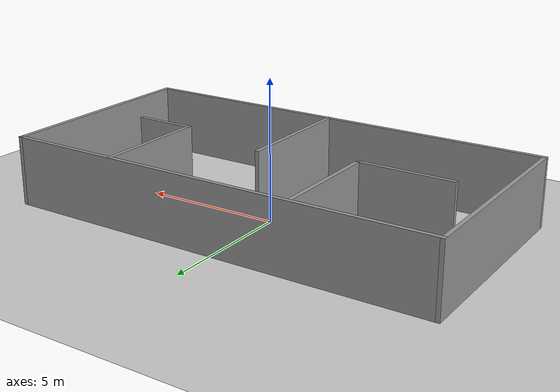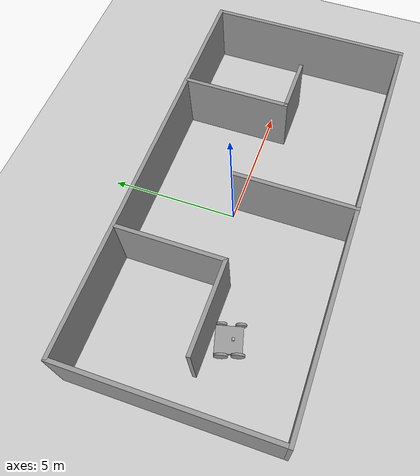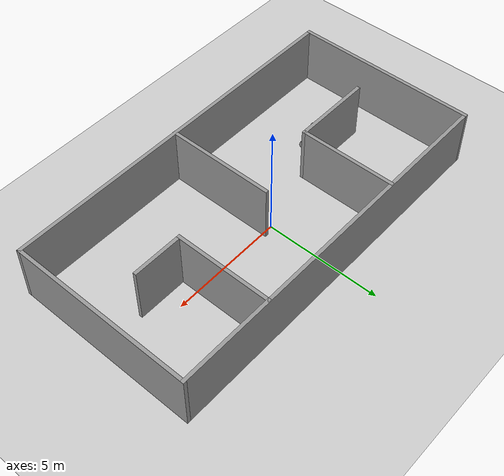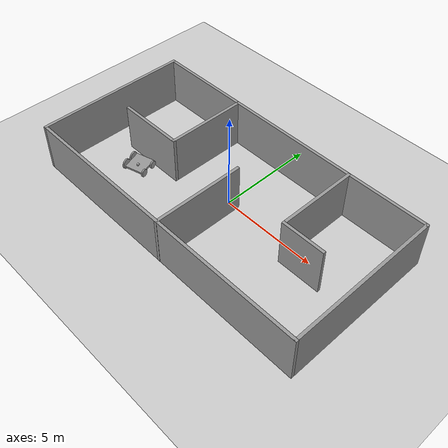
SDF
<sdf version="1.7">
 <world name="default">
  <light name="sun" type="directional">
   <pose>0 0 10 0 -0 0</pose>
   <diffuse>0.8 0.8 0.8 1</diffuse>
   <specular>0.2 0.2 0.2 1</specular>
   <attenuation>
    <range>1000</range>
    <constant>0.9</constant>
    <linear>0.01</linear>
    <quadratic>0.001</quadratic>
   </attenuation>
   <direction>-0.5 0.1 -0.9</direction>
   <spot><inner_angle>0</inner_angle><outer_angle>0</outer_angle><falloff>0</falloff></spot>
  </light>
  <model name="ground_plane">
   <static>1</static>
   <link name="link">
    <collision name="collision">
     <geometry><plane><normal>0 0 1</normal><size>100 100</size></plane></geometry>
     <surface>
      <contact><collide_bitmask>65535</collide_bitmask></contact>
      <friction><ode><mu>100</mu><mu2>50</mu2></ode></friction>
     </surface>
    </collision>
    <visual name="visual">
     <cast_shadows>0</cast_shadows>
     <geometry><plane><normal>0 0 1</normal><size>100 100</size></plane></geometry>
     <material>
      <script><uri>file://media/materials/scripts/gazebo.material</uri><name>Gazebo/Grey</name></script>
     </material>
    </visual>
   </link>
  </model>
  <gravity>0 0 -9.8</gravity>
  <magnetic_field>6e-06 2.3e-05 -4.2e-05</magnetic_field>
  <atmosphere type="adiabatic"/>
  <physics type="ode">
   <max_step_size>0.001</max_step_size>
   <real_time_factor>1</real_time_factor>
   <real_time_update_rate>1000</real_time_update_rate>
  </physics>
  <scene><ambient>0.4 0.4 0.4 1</ambient><background>0.7 0.7 0.7 1</background><shadows>1</shadows></scene>
  <spherical_coordinates>
   <surface_model>EARTH_WGS84</surface_model>
   <latitude_deg>0</latitude_deg>
   <longitude_deg>0</longitude_deg>
   <elevation>0</elevation>
   <heading_deg>0</heading_deg>
  </spherical_coordinates>
  <model name="room">
   <pose>0.190281 0.41132 0 0 -0 0</pose>
   <link name="Wall_40">
    <collision name="Wall_40_Collision">
     <geometry><box><size>16 0.15 2.5</size></box></geometry>
     <pose>0 0 1.25 0 -0 0</pose>
    </collision>
    <visual name="Wall_40_Visual">
     <pose>0 0 1.25 0 -0 0</pose>
     <geometry><box><size>16 0.15 2.5</size></box></geometry>
     <material>
      <script><uri>file://media/materials/scripts/gazebo.material</uri><name>Gazebo/Grey</name></script>
      <ambient>1 1 1 1</ambient>
     </material>
     <meta><layer>0</layer></meta>
    </visual>
    <pose>-0 2.92851 0 0 -0 0</pose>
   </link>
   <link name="Wall_41">
    <collision name="Wall_41_Collision">
     <geometry><box><size>8 0.15 2.5</size></box></geometry>
     <pose>0 0 1.25 0 -0 0</pose>
    </collision>
    <visual name="Wall_41_Visual">
     <pose>0 0 1.25 0 -0 0</pose>
     <geometry><box><size>8 0.15 2.5</size></box></geometry>
     <material>
      <script><uri>file://media/materials/scripts/gazebo.material</uri><name>Gazebo/Grey</name></script>
      <ambient>1 1 1 1</ambient>
     </material>
     <meta><layer>0</layer></meta>
    </visual>
    <pose>7.925 -0.996486 0 0 -0 -1.5708</pose>
   </link>
   <link name="Wall_42">
    <collision name="Wall_42_Collision">
     <geometry><box><size>16 0.15 2.5</size></box></geometry>
     <pose>0 0 1.25 0 -0 0</pose>
    </collision>
    <visual name="Wall_42_Visual">
     <pose>0 0 1.25 0 -0 0</pose>
     <geometry><box><size>16 0.15 2.5</size></box></geometry>
     <material>
      <script><uri>file://media/materials/scripts/gazebo.material</uri><name>Gazebo/Grey</name></script>
      <ambient>1 1 1 1</ambient>
     </material>
     <meta><layer>0</layer></meta>
    </visual>
    <pose>-0 -4.92149 0 0 -0 3.14159</pose>
   </link>
   <link name="Wall_43">
    <collision name="Wall_43_Collision">
     <geometry><box><size>8 0.15 2.5</size></box></geometry>
     <pose>0 0 1.25 0 -0 0</pose>
    </collision>
    <visual name="Wall_43_Visual">
     <pose>0 0 1.25 0 -0 0</pose>
     <geometry><box><size>8 0.15 2.5</size></box></geometry>
     <material>
      <script><uri>file://media/materials/scripts/gazebo.material</uri><name>Gazebo/Grey</name></script>
      <ambient>1 1 1 1</ambient>
     </material>
     <meta><layer>0</layer></meta>
    </visual>
    <pose>-7.925 -0.996486 0 0 -0 1.5708</pose>
   </link>
   <link name="Wall_45">
    <collision name="Wall_45_Collision">
     <geometry><box><size>4.25 0.15 2.5</size></box></geometry>
     <pose>0 0 1.25 0 -0 0</pose>
    </collision>
    <visual name="Wall_45_Visual">
     <pose>0 0 1.25 0 -0 0</pose>
     <geometry><box><size>4.25 0.15 2.5</size></box></geometry>
     <material>
      <script><uri>file://media/materials/scripts/gazebo.material</uri><name>Gazebo/Grey</name></script>
      <ambient>1 1 1 1</ambient>
     </material>
     <meta><layer>0</layer></meta>
    </visual>
    <pose>-3.0589 0.852492 0 0 -0 -1.5708</pose>
   </link>
   <link name="Wall_46">
    <collision name="Wall_46_Collision">
     <geometry><box><size>3.5 0.15 2.5</size></box></geometry>
     <pose>0 0 1.25 0 -0 0</pose>
    </collision>
    <visual name="Wall_46_Visual">
     <pose>0 0 1.25 0 -0 0</pose>
     <geometry><box><size>3.5 0.15 2.5</size></box></geometry>
     <material>
      <script><uri>file://media/materials/scripts/gazebo.material</uri><name>Gazebo/Grey</name></script>
      <ambient>1 1 1 1</ambient>
     </material>
     <meta><layer>0</layer></meta>
    </visual>
    <pose>-4.7339 -1.19751 0 0 -0 3.14159</pose>
   </link>
   <link name="Wall_48">
    <collision name="Wall_48_Collision">
     <geometry><box><size>4.25 0.15 2.5</size></box></geometry>
     <pose>0 0 1.25 0 -0 0</pose>
    </collision>
    <visual name="Wall_48_Visual">
     <pose>0 0 1.25 0 -0 0</pose>
     <geometry><box><size>4.25 0.15 2.5</size></box></geometry>
     <material>
      <script><uri>file://media/materials/scripts/gazebo.material</uri><name>Gazebo/Grey</name></script>
      <ambient>1 1 1 1</ambient>
     </material>
     <meta><layer>0</layer></meta>
    </visual>
    <pose>3.86294 0.852492 0 0 -0 -1.5708</pose>
   </link>
   <link name="Wall_49">
    <collision name="Wall_49_Collision">
     <geometry><box><size>2.25 0.15 2.5</size></box></geometry>
     <pose>0 0 1.25 0 -0 0</pose>
    </collision>
    <visual name="Wall_49_Visual">
     <pose>0 0 1.25 0 -0 0</pose>
     <geometry><box><size>2.25 0.15 2.5</size></box></geometry>
     <material>
      <script><uri>file://media/materials/scripts/gazebo.material</uri><name>Gazebo/Grey</name></script>
      <ambient>1 1 1 1</ambient>
     </material>
     <meta><layer>0</layer></meta>
    </visual>
    <pose>4.91294 -1.19751 0 0 -0 0</pose>
   </link>
   <link name="Wall_51">
    <collision name="Wall_51_Collision">
     <geometry><box><size>4.75 0.15 2.5</size></box></geometry>
     <pose>0 0 1.25 0 -0 0</pose>
    </collision>
    <visual name="Wall_51_Visual">
     <pose>0 0 1.25 0 -0 0</pose>
     <geometry><box><size>4.75 0.15 2.5</size></box></geometry>
     <material>
      <script><uri>file://media/materials/scripts/gazebo.material</uri><name>Gazebo/Grey</name></script>
      <ambient>1 1 1 1</ambient>
     </material>
     <meta><layer>0</layer></meta>
    </visual>
    <pose>0.245887 -2.63011 0 0 -0 1.5708</pose>
   </link>
   <static>1</static>
  </model>
  <model name="che1">
   <link name="link_4">
    <inertial>
     <mass>0.105753</mass>
     <inertia>
      <ixx>0.00891129</ixx>
      <ixy>0</ixy>
      <ixz>0</ixz>
      <iyy>0.00891129</iyy>
      <iyz>0</iyz>
      <izz>0.0176255</izz>
     </inertia>
    </inertial>
    <pose>-0.030652 0.054695 -0.025033 0 -0 0</pose>
    <visual name="visual">
     <geometry><box><size>1 1 0.105751</size></box></geometry>
     <material>
      <lighting>1</lighting>
      <script><uri>file://media/materials/scripts/gazebo.material</uri><name>Gazebo/Grey</name></script>
      <shader type="pixel"><normal_map>__default__</normal_map></shader>
      <emissive>0 0 0 1</emissive>
      <ambient>0.3 0.3 0.3 1</ambient>
      <diffuse>0.7 0.7 0.7 1</diffuse>
      <specular>0.01 0.01 0.01 1</specular>
     </material>
    </visual>
    <collision name="collision">
     <geometry><box><size>1 1 0.105751</size></box></geometry>
     <surface>
      <friction>
       <ode><mu>1</mu><mu2>1</mu2><fdir1>0 0 0</fdir1><slip1>0</slip1><slip2>0</slip2></ode>
       <torsional>
        <coefficient>1</coefficient>
        <patch_radius>0</patch_radius>
        <surface_radius>0</surface_radius>
        <use_patch_radius>1</use_patch_radius>
        <ode><slip>0</slip></ode>
       </torsional>
      </friction>
      <bounce><restitution_coefficient>0</restitution_coefficient><threshold>1e+06</threshold></bounce>
      <contact>
       <collide_without_contact>0</collide_without_contact>
       <collide_without_contact_bitmask>1</collide_without_contact_bitmask>
       <collide_bitmask>1</collide_bitmask>
       <ode>
        <soft_cfm>0</soft_cfm>
        <soft_erp>0.2</soft_erp>
        <kp>1e+13</kp>
        <kd>1</kd>
        <max_vel>0.01</max_vel>
        <min_depth>0</min_depth>
       </ode>
       <bullet>
        <split_impulse>1</split_impulse>
        <split_impulse_penetration_threshold>-0.01</split_impulse_penetration_threshold>
        <soft_cfm>0</soft_cfm>
        <soft_erp>0.2</soft_erp>
        <kp>1e+13</kp>
        <kd>1</kd>
       </bullet>
      </contact>
     </surface>
    </collision>
   </link>
   <link name="link_5">
    <inertial>
     <mass>0.0130438</mass>
     <inertia>
      <ixx>0.000136633</ixx>
      <ixy>0</ixy>
      <ixz>0</ixz>
      <iyy>0.000136633</iyy>
      <iyz>0</iyz>
      <izz>0.000258557</izz>
     </inertia>
    </inertial>
    <pose>0.52329 -0.349267 -0.002499 -3.14134 1.5693 -3.14134</pose>
    <visual name="visual">
     <geometry><cylinder><radius>0.199109</radius><length>0.082254</length></cylinder></geometry>
     <material>
      <lighting>1</lighting>
      <script><uri>file://media/materials/scripts/gazebo.material</uri><name>Gazebo/Grey</name></script>
      <shader type="pixel"><normal_map>__default__</normal_map></shader>
      <ambient>0.3 0.3 0.3 1</ambient>
      <diffuse>0.7 0.7 0.7 1</diffuse>
      <specular>0.01 0.01 0.01 1</specular>
      <emissive>0 0 0 1</emissive>
     </material>
    </visual>
    <collision name="collision">
     <geometry><cylinder><radius>0.199109</radius><length>0.082254</length></cylinder></geometry>
     <surface>
      <friction>
       <ode><mu>1</mu><mu2>1</mu2><fdir1>0 0 0</fdir1><slip1>0</slip1><slip2>0</slip2></ode>
       <torsional>
        <coefficient>1</coefficient>
        <patch_radius>0</patch_radius>
        <surface_radius>0</surface_radius>
        <use_patch_radius>1</use_patch_radius>
        <ode><slip>0</slip></ode>
       </torsional>
      </friction>
      <bounce><restitution_coefficient>0</restitution_coefficient><threshold>1e+06</threshold></bounce>
      <contact>
       <collide_without_contact>0</collide_without_contact>
       <collide_without_contact_bitmask>1</collide_without_contact_bitmask>
       <collide_bitmask>1</collide_bitmask>
       <ode>
        <soft_cfm>0</soft_cfm>
        <soft_erp>0.2</soft_erp>
        <kp>1e+13</kp>
        <kd>1</kd>
        <max_vel>0.01</max_vel>
        <min_depth>0</min_depth>
       </ode>
       <bullet>
        <split_impulse>1</split_impulse>
        <split_impulse_penetration_threshold>-0.01</split_impulse_penetration_threshold>
        <soft_cfm>0</soft_cfm>
        <soft_erp>0.2</soft_erp>
        <kp>1e+13</kp>
        <kd>1</kd>
       </bullet>
      </contact>
     </surface>
    </collision>
   </link>
   <link name="link_5_clone">
    <inertial>
     <mass>0.0211729</mass>
     <inertia>
      <ixx>0.000352567</ixx>
      <ixy>0</ixy>
      <ixz>0</ixz>
      <iyy>0.000352567</iyy>
      <iyz>0</iyz>
      <izz>0.000681258</izz>
     </inertia>
    </inertial>
    <pose>-0.570175 -0.294699 0.055097 1.81425 -1.52018 -1.81492</pose>
    <visual name="visual">
     <geometry><cylinder><radius>0.253677</radius><length>0.082254</length></cylinder></geometry>
     <material>
      <lighting>1</lighting>
      <script><uri>file://media/materials/scripts/gazebo.material</uri><name>Gazebo/Grey</name></script>
      <shader type="pixel"><normal_map>__default__</normal_map></shader>
      <ambient>0.3 0.3 0.3 1</ambient>
      <diffuse>0.7 0.7 0.7 1</diffuse>
      <specular>0.01 0.01 0.01 1</specular>
      <emissive>0 0 0 1</emissive>
     </material>
    </visual>
    <collision name="collision">
     <geometry><cylinder><radius>0.253677</radius><length>0.082254</length></cylinder></geometry>
     <surface>
      <friction>
       <ode><mu>1</mu><mu2>1</mu2><fdir1>0 0 0</fdir1><slip1>0</slip1><slip2>0</slip2></ode>
       <torsional>
        <coefficient>1</coefficient>
        <patch_radius>0</patch_radius>
        <surface_radius>0</surface_radius>
        <use_patch_radius>1</use_patch_radius>
        <ode><slip>0</slip></ode>
       </torsional>
      </friction>
      <bounce><restitution_coefficient>0</restitution_coefficient><threshold>1e+06</threshold></bounce>
      <contact>
       <collide_without_contact>0</collide_without_contact>
       <collide_without_contact_bitmask>1</collide_without_contact_bitmask>
       <collide_bitmask>1</collide_bitmask>
       <ode>
        <soft_cfm>0</soft_cfm>
        <soft_erp>0.2</soft_erp>
        <kp>1e+13</kp>
        <kd>1</kd>
        <max_vel>0.01</max_vel>
        <min_depth>0</min_depth>
       </ode>
       <bullet>
        <split_impulse>1</split_impulse>
        <split_impulse_penetration_threshold>-0.01</split_impulse_penetration_threshold>
        <soft_cfm>0</soft_cfm>
        <soft_erp>0.2</soft_erp>
        <kp>1e+13</kp>
        <kd>1</kd>
       </bullet>
      </contact>
     </surface>
    </collision>
   </link>
   <link name="link_5_clone_0">
    <inertial>
     <mass>0.0130438</mass>
     <inertia>
      <ixx>0.000136633</ixx>
      <ixy>0</ixy>
      <ixz>0</ixz>
      <iyy>0.000136633</iyy>
      <iyz>0</iyz>
      <izz>0.000258557</izz>
     </inertia>
    </inertial>
    <pose>0.529989 0.351015 -0.062047 -1.56732 1.45351 1.60443</pose>
    <visual name="visual">
     <geometry><cylinder><radius>0.199109</radius><length>0.082254</length></cylinder></geometry>
     <material>
      <lighting>1</lighting>
      <script><uri>file://media/materials/scripts/gazebo.material</uri><name>Gazebo/Grey</name></script>
      <shader type="pixel"><normal_map>__default__</normal_map></shader>
      <ambient>0.3 0.3 0.3 1</ambient>
      <diffuse>0.7 0.7 0.7 1</diffuse>
      <specular>0.01 0.01 0.01 1</specular>
      <emissive>0 0 0 1</emissive>
     </material>
    </visual>
    <collision name="collision">
     <geometry><cylinder><radius>0.199109</radius><length>0.082254</length></cylinder></geometry>
     <surface>
      <friction>
       <ode><mu>1</mu><mu2>1</mu2><fdir1>0 0 0</fdir1><slip1>0</slip1><slip2>0</slip2></ode>
       <torsional>
        <coefficient>1</coefficient>
        <patch_radius>0</patch_radius>
        <surface_radius>0</surface_radius>
        <use_patch_radius>1</use_patch_radius>
        <ode><slip>0</slip></ode>
       </torsional>
      </friction>
      <bounce><restitution_coefficient>0</restitution_coefficient><threshold>1e+06</threshold></bounce>
      <contact>
       <collide_without_contact>0</collide_without_contact>
       <collide_without_contact_bitmask>1</collide_without_contact_bitmask>
       <collide_bitmask>1</collide_bitmask>
       <ode>
        <soft_cfm>0</soft_cfm>
        <soft_erp>0.2</soft_erp>
        <kp>1e+13</kp>
        <kd>1</kd>
        <max_vel>0.01</max_vel>
        <min_depth>0</min_depth>
       </ode>
       <bullet>
        <split_impulse>1</split_impulse>
        <split_impulse_penetration_threshold>-0.01</split_impulse_penetration_threshold>
        <soft_cfm>0</soft_cfm>
        <soft_erp>0.2</soft_erp>
        <kp>1e+13</kp>
        <kd>1</kd>
       </bullet>
      </contact>
     </surface>
    </collision>
   </link>
   <link name="link_5_clone_clone">
    <inertial>
     <mass>0.0211729</mass>
     <inertia>
      <ixx>0.000352567</ixx>
      <ixy>0</ixy>
      <ixz>0</ixz>
      <iyy>0.000352567</iyy>
      <iyz>0</iyz>
      <izz>0.000681258</izz>
     </inertia>
    </inertial>
    <pose>-0.597128 0.299086 0.007995 -1.55889 -1.50283 -1.57429</pose>
    <visual name="visual">
     <geometry><cylinder><radius>0.253677</radius><length>0.082254</length></cylinder></geometry>
     <material>
      <lighting>1</lighting>
      <script><uri>file://media/materials/scripts/gazebo.material</uri><name>Gazebo/Grey</name></script>
      <shader type="pixel"><normal_map>__default__</normal_map></shader>
      <ambient>0.3 0.3 0.3 1</ambient>
      <diffuse>0.7 0.7 0.7 1</diffuse>
      <specular>0.01 0.01 0.01 1</specular>
      <emissive>0 0 0 1</emissive>
     </material>
    </visual>
    <collision name="collision">
     <geometry><cylinder><radius>0.253677</radius><length>0.082254</length></cylinder></geometry>
     <surface>
      <friction>
       <ode><mu>1</mu><mu2>1</mu2><fdir1>0 0 0</fdir1><slip1>0</slip1><slip2>0</slip2></ode>
       <torsional>
        <coefficient>1</coefficient>
        <patch_radius>0</patch_radius>
        <surface_radius>0</surface_radius>
        <use_patch_radius>1</use_patch_radius>
        <ode><slip>0</slip></ode>
       </torsional>
      </friction>
      <bounce><restitution_coefficient>0</restitution_coefficient><threshold>1e+06</threshold></bounce>
      <contact>
       <collide_without_contact>0</collide_without_contact>
       <collide_without_contact_bitmask>1</collide_without_contact_bitmask>
       <collide_bitmask>1</collide_bitmask>
       <ode>
        <soft_cfm>0</soft_cfm>
        <soft_erp>0.2</soft_erp>
        <kp>1e+13</kp>
        <kd>1</kd>
        <max_vel>0.01</max_vel>
        <min_depth>0</min_depth>
       </ode>
       <bullet>
        <split_impulse>1</split_impulse>
        <split_impulse_penetration_threshold>-0.01</split_impulse_penetration_threshold>
        <soft_cfm>0</soft_cfm>
        <soft_erp>0.2</soft_erp>
        <kp>1e+13</kp>
        <kd>1</kd>
       </bullet>
      </contact>
     </surface>
    </collision>
   </link>
   <model name="depth_camera">
    <link name="link">
     <pose>0 0 0.05 0 -0 0</pose>
     <inertial>
      <mass>0.1</mass>
      <inertia>
       <ixx>0.000166667</ixx>
       <iyy>0.000166667</iyy>
       <izz>0.000166667</izz>
       <ixy>0</ixy>
       <ixz>0</ixz>
       <iyz>0</iyz>
      </inertia>
     </inertial>
     <collision name="collision"><geometry><box><size>0.1 0.1 0.1</size></box></geometry></collision>
     <visual name="visual"><geometry><box><size>0.1 0.1 0.1</size></box></geometry></visual>
     <sensor name="camera" type="depth">
      <camera>
       <horizontal_fov>1.047</horizontal_fov>
       <image><width>320</width><height>240</height></image>
       <clip><near>0.1</near><far>100</far></clip>
      </camera>
      <always_on>1</always_on>
      <update_rate>30</update_rate>
      <visualize>1</visualize>
     </sensor>
    </link>
    <pose>-0.009722 -0.094743 0.03003 0 -0 0</pose>
   </model>
   <joint name="link_4_JOINT_0" type="revolute">
    <parent>link_4</parent>
    <child>link_5_clone_0</child>
    <axis>
     <xyz>-0 -0 -1</xyz>
     <limit>
      <lower>-1.79769e+308</lower>
      <upper>1.79769e+308</upper>
      <effort>-1</effort>
      <velocity>-1</velocity>
     </limit>
     <dynamics>
      <spring_reference>0</spring_reference>
      <spring_stiffness>0</spring_stiffness>
      <damping>0</damping>
     </dynamics>
    </axis>
    <physics>
     <ode><limit><cfm>0</cfm><erp>0.2</erp></limit><suspension><cfm>0</cfm><erp>0.2</erp></suspension></ode>
    </physics>
   </joint>
   <joint name="link_4_JOINT_1_0" type="revolute">
    <parent>link_4</parent>
    <child>link_5_clone_clone</child>
    <axis>
     <xyz>-0 -0 -1</xyz>
     <limit>
      <lower>-1.79769e+308</lower>
      <upper>1.79769e+308</upper>
      <effort>-1</effort>
      <velocity>-1</velocity>
     </limit>
     <dynamics>
      <spring_reference>0</spring_reference>
      <spring_stiffness>0</spring_stiffness>
      <damping>0</damping>
     </dynamics>
    </axis>
    <physics>
     <ode><limit><cfm>0</cfm><erp>0.2</erp></limit><suspension><cfm>0</cfm><erp>0.2</erp></suspension></ode>
    </physics>
   </joint>
   <joint name="link_4_JOINT_1" type="revolute">
    <parent>link_4</parent>
    <child>link_5</child>
    <axis>
     <xyz>0 0 1</xyz>
     <limit>
      <lower>-1.79769e+308</lower>
      <upper>1.79769e+308</upper>
      <effort>-1</effort>
      <velocity>-1</velocity>
     </limit>
     <dynamics>
      <spring_reference>0</spring_reference>
      <spring_stiffness>0</spring_stiffness>
      <damping>0</damping>
      <friction>0</friction>
     </dynamics>
    </axis>
    <physics>
     <ode><limit><cfm>0</cfm><erp>0.2</erp></limit><suspension><cfm>0</cfm><erp>0.2</erp></suspension></ode>
    </physics>
   </joint>
   <joint name="link_4_JOINT_2" type="revolute">
    <parent>link_4</parent>
    <child>link_5_clone</child>
    <axis>
     <xyz>0 0 1</xyz>
     <limit>
      <lower>-1.79769e+308</lower>
      <upper>1.79769e+308</upper>
      <effort>-1</effort>
      <velocity>-1</velocity>
     </limit>
     <dynamics>
      <spring_reference>0</spring_reference>
      <spring_stiffness>0</spring_stiffness>
      <damping>0</damping>
      <friction>0</friction>
     </dynamics>
    </axis>
    <physics>
     <ode><limit><cfm>0</cfm><erp>0.2</erp></limit><suspension><cfm>0</cfm><erp>0.2</erp></suspension></ode>
    </physics>
   </joint>
   <joint name="link_JOINT_3" type="fixed">
    <parent>depth_camera::link</parent>
    <child>link_4</child>
    <physics>
     <ode><limit><cfm>0</cfm><erp>0.2</erp></limit><suspension><cfm>0</cfm><erp>0.2</erp></suspension></ode>
    </physics>
   </joint>
   <static>0</static>
   <plugin name="follower" filename="libFollowerPlugin.so"/>
   <pose>-4.73411 -1.54683 0.228121 0.084977 -0.00634 0.269263</pose>
  </model>
 </world>
</sdf>
